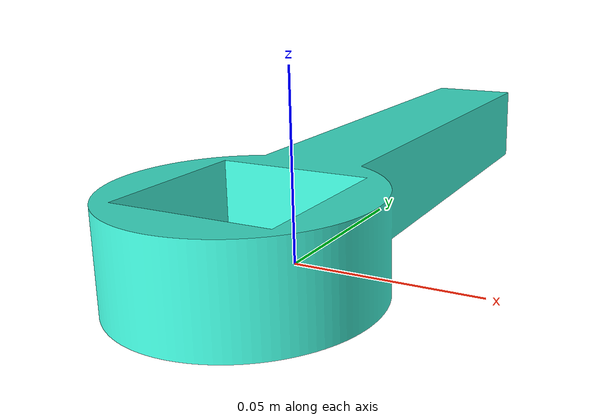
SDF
<?xml version='1.0'?>
<sdf version='1.6'>
  <model name='cran_field_pendulum'>
    <link name='link_12'>
      <pose frame=''>-0.000 -0.1058 -0.03052 0 -0 0</pose>
<inertial>
    <pose>0 0.15626959 0.04302 0 0 0</pose>
    <mass>0.1</mass>
    <inertia>
      <ixx> 0.0018898709774258643</ixx>
      <ixy>0</ixy>
      <ixz>-0</ixz>
      <iyy> 0.00020207761177342323</iyy>
      <iyz>0</iyz>
      <izz>0.0020398652521309625</izz>
    </inertia>
  </inertial>
          <visual name='visual'>
        <geometry>
          <mesh>
            <uri>model://cran_field_pendulum/cran_feld_pendulum.stl</uri>
            <scale>0.001 0.001 0.001</scale>
          </mesh>
        </geometry>
        <material>
          <ambient>0.25 0.95 0.85 1</ambient>
          <diffuse>0.25 0.95 0.85 1</diffuse>
          <specular>0.01 0.01 0.01 1</specular>
          <emissive>0 0 0 1</emissive>
          <shader type='vertex'>
            <normal_map>__default__</normal_map>
          </shader>
        </material>
        <cast_shadows>1</cast_shadows>
        <transparency>0</transparency>
      </visual>
      <collision name='collision'>
        <laser_retro>0</laser_retro>
        <max_contacts>10</max_contacts>
        <pose frame=''>0 0 0 0 -0 0</pose>
        <geometry>
          <mesh>
            <uri>model://cran_field_pendulum/cran_feld_pendulum.stl</uri>
            <scale>0.001 0.001 0.001</scale>
          </mesh>
        </geometry>

<surface>
          <friction>
            <ode>
              <mu>1e15</mu>
              <mu2>1e15</mu2>
            </ode>
          </friction>
          <contact>
            <ode>
              <kp>1e15</kp>
              <kd>1e15</kd>
              <min_depth>0.0001</min_depth>
              <max_vel>0</max_vel>
            </ode>
          </contact>
        </surface>
       </collision>
    </link>

    <static>0</static>
    <allow_auto_disable>1</allow_auto_disable>
  </model>
</sdf>
